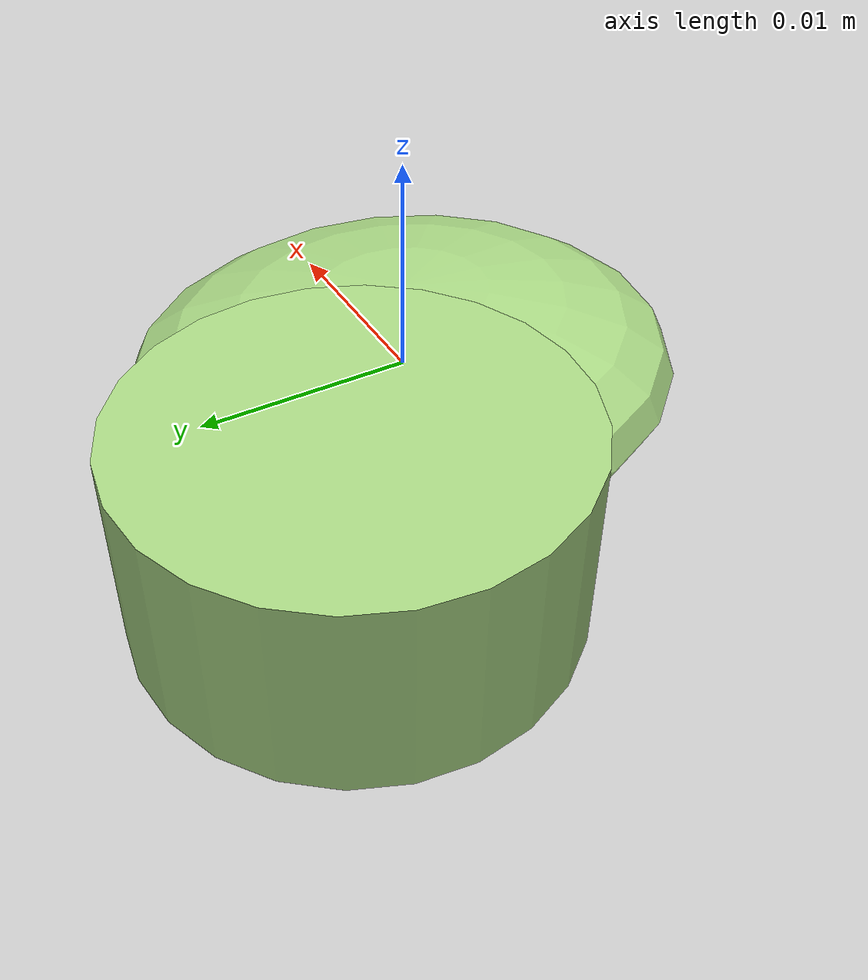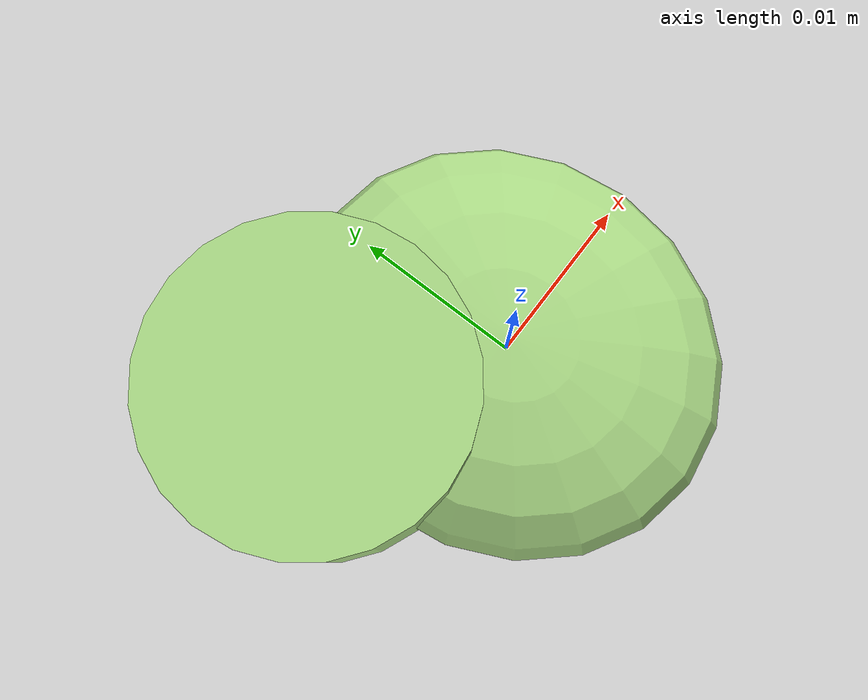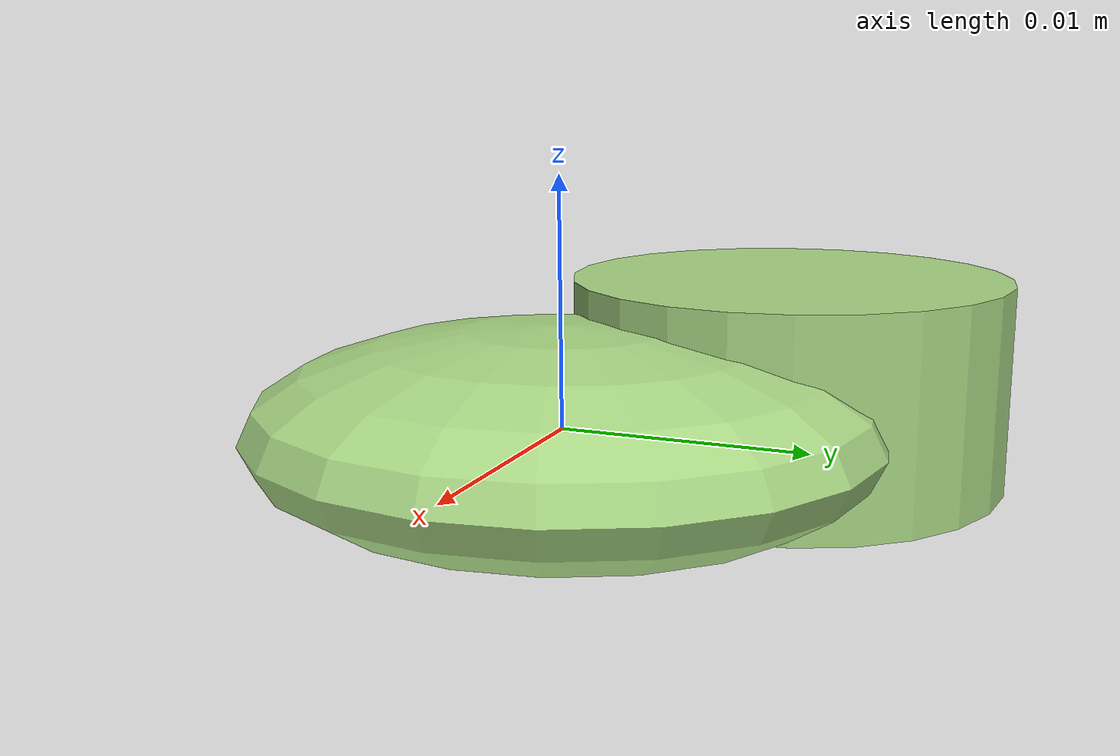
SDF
<?xml version="1.0" ?>
<!-- |    This document was autogenerated by xmacro from data/veggie_template/veggie_base.sdf.xacro  | -->
<!-- |    EDITING THIS FILE BY HAND IS NOT RECOMMENDED                                               | -->
<sdf version="1.8">
	<!-- Parameters -->
	<!-- Base -->
	<!-- Joint 0 -->
	<!-- Link 1 -->
	<!-- Joint 1 -->
	<!-- Link 2 -->
	<!-- Primitives -->
	<!-- All dimensions are half -->
	<!-- Object -->
	<model name="veggie">
		<!-- link0 -->
		<link name="link0">
			<inertial>
				<mass>0.002588328913624309</mass>
				<inertia>
					<ixx>9.457732848910119e-08</ixx>
					<ixy>0</ixy>
					<ixz>0</ixz>
					<iyy>7.79580171230437e-08</iyy>
					<iyz>0</iyz>
					<izz>1.5459906965836838e-07</izz>
				</inertia>
			</inertial>
			<visual name="link0_visual">
				<pose>0 0 0 0 0 0</pose>
				<geometry>
					<ellipsoid>
						<radii>0.01154430952134443 0.012859837049500205 0.004162233218441805</radii>
					</ellipsoid>
				</geometry>
				<material>
					<ambient>0.659 0.839 0.514 1</ambient>
					<diffuse>0.659 0.839 0.514 1</diffuse>
					<specular>0 0 0 0</specular>
					<emissive>0 0 0 1</emissive>
				</material>
			</visual>
			<collision name="link0_collision">
				<pose>0 0 0 0 0 0 </pose>
				<geometry>
					<ellipsoid>
						<radii>0.01154430952134443 0.012859837049500205 0.004162233218441805</radii>
					</ellipsoid>
				</geometry>
			</collision>
		</link>
		<!-- link1 -->
		<joint name="joint0" type="fixed">
			<pose relative_to="link0">-0.00878155624233082 0.006907354649509885 0.0008022964880423713 0.0 0.0 0.0</pose>
			<parent>link0</parent>
			<child>link1</child>
		</joint>
		<link name="link1">
			<pose relative_to="joint0">0 0 0 0 0 0</pose>
			<inertial>
				<mass>0.0024590933215573913</mass>
				<inertia>
					<ixx>7.039562323446724e-08</ixx>
					<ixy>0</ixy>
					<ixz>0</ixz>
					<iyy>7.039562323446724e-08</iyy>
					<iyz>0</iyz>
					<izz>1.086064445462147e-07</izz>
				</inertia>
			</inertial>
			<visual name="link1_visual">
				<pose>0 0 0 0 0 0</pose>
				<geometry>
					<cylinder>
						<radius>0.009398429561620403</radius>
						<length>0.008861628518463206</length>
					</cylinder>
				</geometry>
				<material>
					<ambient>0.659 0.839 0.514 1</ambient>
					<diffuse>0.659 0.839 0.514 1</diffuse>
					<specular>0 0 0 0</specular>
					<emissive>0 0 0 1</emissive>
				</material>
			</visual>
			<collision name="link1_collision">
				<pose>0 0 0 0 0 0 </pose>
				<geometry>
					<cylinder>
						<radius>0.009398429561620403</radius>
						<length>0.008861628518463206</length>
					</cylinder>
				</geometry>
			</collision>
		</link>
		<!-- link2 -->
	</model>
</sdf>
